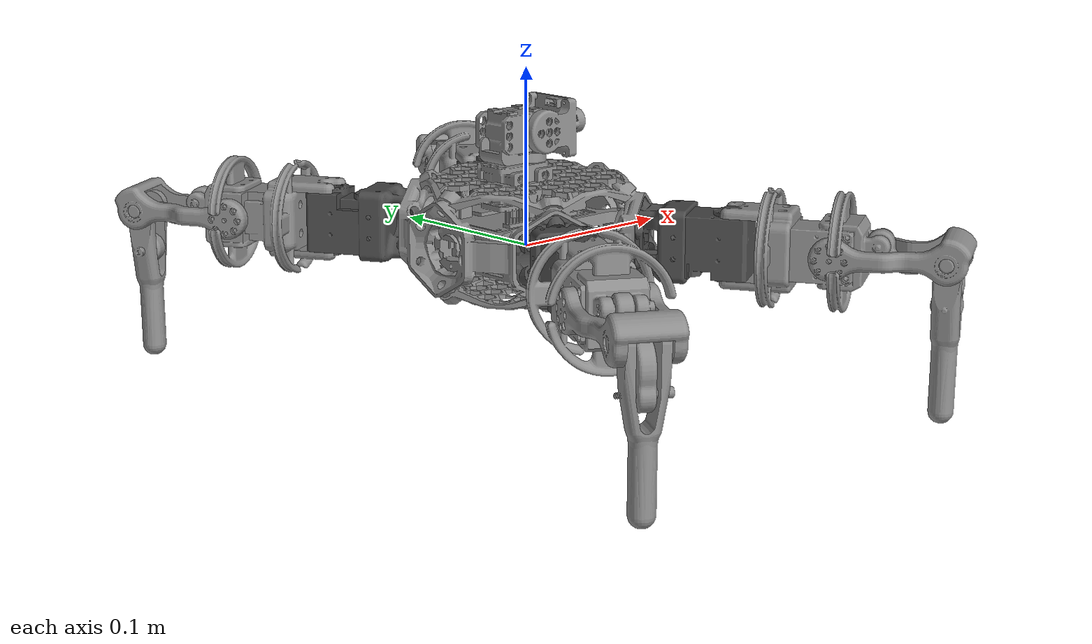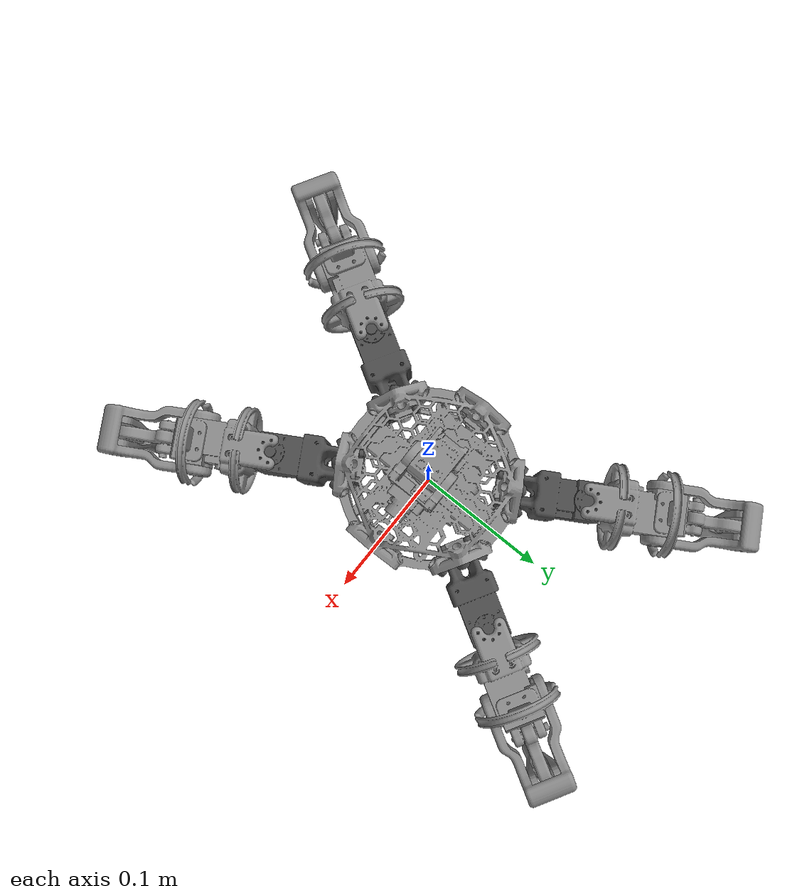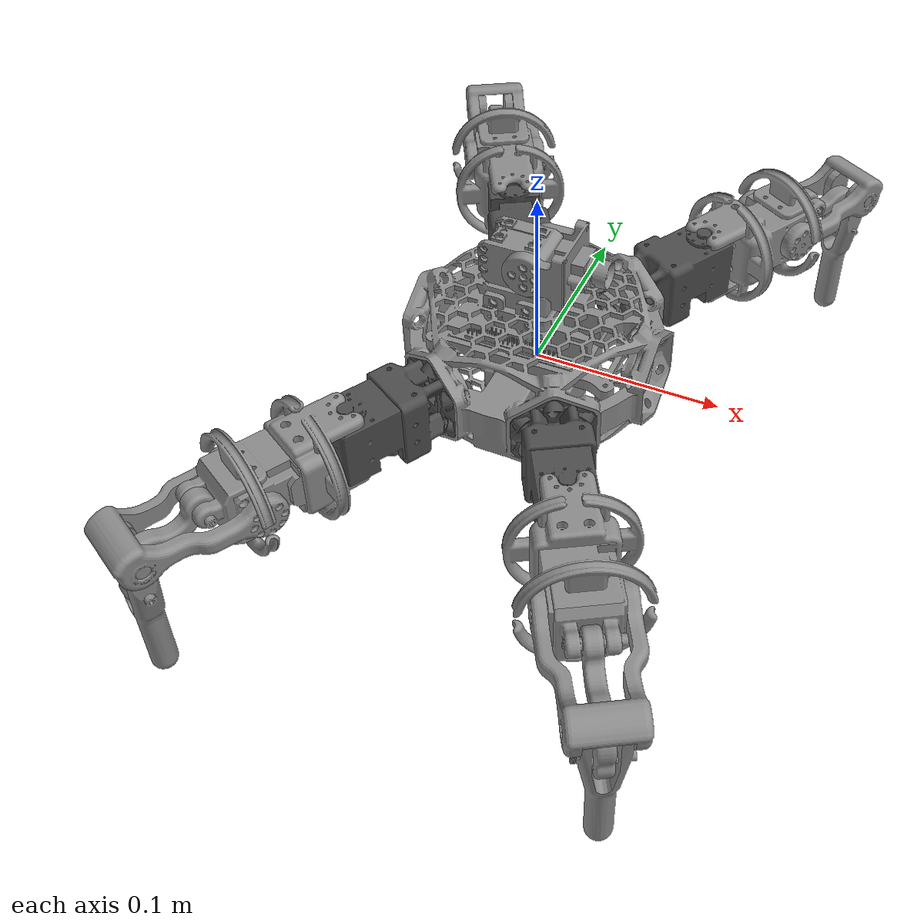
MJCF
<mujoco model="snapbot">
    <compiler inertiafromgeom="auto" angle="radian" coordinate="local"/>

    <default>
        <joint limited="true" armature="0.01"/>
        <site type="sphere" rgba=".5 .5 .5 1" size="0.01"/>
        <tendon rgba="0.45 0.1 0 1" width="0.002"/>
        <geom contype="1" conaffinity="1" condim="3" margin="0.001" solref=".02 1" solimp=".8 .8 .01 0.5 2" density="1000"/>
        <equality solref="0.0002 1" solimp="0.99 0.99 0.0001 0.5 2"/>
        <general ctrlrange="-100 100" ctrllimited="true"/>
    </default>

    <option timestep="0.0002" iterations="50" solver="PGS" gravity="0 0 -9.81">
        <flag energy="enable" gravity="enable"/>
    </option>

    <asset>
    </asset>
       <compiler inertiafromgeom="auto" meshdir="./meshes" texturedir="./textures"/>
    <compiler inertiafromgeom="auto" meshdir="./meshes"/>

    <include file="asset.xml"/>

    <worldbody>
        <light directional="true" diffuse=".8 .8 .8" specular=".2 .2 .2" pos="0 0 0.5" dir="0 0 -1"/>
        <include file="snapbot_4_1245.xml"/>
    </worldbody>

    <equality>
        <connect active="true" name="equality_constraint1" anchor="0 -0.025 0" body1="Leg_module_1_4" body2="Leg_module_1_4bar"/>
        <connect active="true" name="equality_constraint2" anchor="0 -0.025 0" body1="Leg_module_2_4" body2="Leg_module_2_4bar"/>
        <connect active="true" name="equality_constraint4" anchor="0 -0.025 0" body1="Leg_module_4_4" body2="Leg_module_4_4bar"/>
        <connect active="true" name="equality_constraint5" anchor="0 -0.025 0" body1="Leg_module_5_4" body2="Leg_module_5_4bar"/>
    </equality>

    <actuator>
        <motor name="actuator3" ctrllimited="true" ctrlrange="-10 10" joint="leg_1_2"
                 gear="47.2660957561"/>
        <motor name="actuator4" ctrllimited="true" ctrlrange="-10 10" joint="leg_1_3"
                 gear="47.2660957561"/>
        <motor name="actuator5" ctrllimited="true" ctrlrange="-10 10" joint="leg_2_2"
                 gear="47.2660957561"/>
        <motor name="actuator6" ctrllimited="true" ctrlrange="-10 10" joint="leg_2_3"
                 gear="47.2660957561"/>
        <motor name="actuator9" ctrllimited="true" ctrlrange="-10 10" joint="leg_4_2"
                 gear="47.2660957561"/>
        <motor name="actuator10" ctrllimited="true" ctrlrange="-10 10" joint="leg_4_3"
                 gear="47.2660957561"/>
        <motor name="actuator11" ctrllimited="true" ctrlrange="-10 10" joint="leg_5_2"
                 gear="47.2660957561"/>
        <motor name="actuator12" ctrllimited="true" ctrlrange="-10 10" joint="leg_5_3"
                 gear="47.2660957561"/>
    </actuator>
</mujoco>

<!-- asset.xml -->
<mujoco>
    <asset>
        <mesh name="Body" file="meshes/Body.STL" />
        <mesh name="Camera_module_1" file="meshes/Camera_module_1.STL" />
        <mesh name="Camera_module_2" file="meshes/Camera_module_2.STL" />

        <mesh name="Leg_module_1_1" file="meshes/Leg_module_1_1.STL" />
        <mesh name="Leg_module_1_2" file="meshes/Leg_module_1_2.STL" />
        <mesh name="Leg_module_1_3" file="meshes/Leg_module_1_3.STL" />
        <mesh name="Leg_module_1_4" file="meshes/Leg_module_1_4.STL" />
        <mesh name="Leg_module_1_4bar" file="meshes/Leg_module_1_4bar.STL" />

        <mesh name="Leg_module_2_1" file="meshes/Leg_module_2_1.STL" />
        <mesh name="Leg_module_2_2" file="meshes/Leg_module_2_2.STL" />
        <mesh name="Leg_module_2_3" file="meshes/Leg_module_2_3.STL" />
        <mesh name="Leg_module_2_4" file="meshes/Leg_module_2_4.STL" />
        <mesh name="Leg_module_2_4bar" file="meshes/Leg_module_2_4bar.STL" />

        <mesh name="Leg_module_3_1" file="meshes/Leg_module_3_1.STL" />
        <mesh name="Leg_module_3_2" file="meshes/Leg_module_3_2.STL" />
        <mesh name="Leg_module_3_3" file="meshes/Leg_module_3_3.STL" />
        <mesh name="Leg_module_3_4" file="meshes/Leg_module_3_4.STL" />
        <mesh name="Leg_module_3_4bar" file="meshes/Leg_module_3_4bar.STL" />

        <mesh name="Leg_module_4_1" file="meshes/Leg_module_4_1.STL" />
        <mesh name="Leg_module_4_2" file="meshes/Leg_module_4_2.STL" />
        <mesh name="Leg_module_4_3" file="meshes/Leg_module_4_3.STL" />
        <mesh name="Leg_module_4_4" file="meshes/Leg_module_4_4.STL" />
        <mesh name="Leg_module_4_4bar" file="meshes/Leg_module_4_4bar.STL" />

        <mesh name="Leg_module_5_1" file="meshes/Leg_module_5_1.STL" />
        <mesh name="Leg_module_5_2" file="meshes/Leg_module_5_2.STL" />
        <mesh name="Leg_module_5_3" file="meshes/Leg_module_5_3.STL" />
        <mesh name="Leg_module_5_4" file="meshes/Leg_module_5_4.STL" />
        <mesh name="Leg_module_5_4bar" file="meshes/Leg_module_5_4bar.STL" />

        <mesh name="Leg_module_6_1" file="meshes/Leg_module_6_1.STL" />
        <mesh name="Leg_module_6_2" file="meshes/Leg_module_6_2.STL" />
        <mesh name="Leg_module_6_3" file="meshes/Leg_module_6_3.STL" />
        <mesh name="Leg_module_6_4" file="meshes/Leg_module_6_4.STL" />
        <mesh name="Leg_module_6_4bar" file="meshes/Leg_module_6_4bar.STL" />
    </asset>
</mujoco>

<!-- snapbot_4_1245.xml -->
<mujoco>

<body name="Body" pos="0 0 0" euler="0 0 0">

    <body name="Camera_module_1" pos="0 0 0.0476705257539267" euler="0 0 2.71487279909846">
        <joint name="camera_1" type="hinge" pos="0 0 0" axis="0 0 1" frictionloss="0.7" damping="0.1" />
        <inertial pos="0.00652656979384509 0.00344579233179434 0.0166383716296387" mass="0.0631785349056668"
            fullinertia="1.62642913929261E-06 2.16302130147651E-06 2.57241198744282E-06 -2.15537782337987E-07 -2.3575284377688E-08 -1.07181784470334E-08"/>

        <body name="Camera_module_2" pos="0 0 0.0183294742460734" euler="-0.00940777862508657 0.016293068306851 -7.66430506155596E-05">
            <joint name="camera_2" type="hinge" pos="0 0 0" axis="0.4 -0.866025403784438 0" limited="true" range="-3.14 0" frictionloss="0.7" damping="0.1" />
            <inertial pos="0.00652656979384509 0.00344579233179434 0.0166383716296387" mass="0.0631785349056668"
                fullinertia="1.62642913929261E-06 2.16302130147651E-06 2.57241198744282E-06 -2.15537782337987E-07 -2.3575284377688E-08 -1.07181784470334E-08"/>
        <geom name="camera_module_2" type="mesh" mesh="Camera_module_2" rgba="0.55 0.55 0.55 1"/>
        </body>
        <geom name="camera_module_1" type="mesh" mesh="Camera_module_1" rgba="0.55 0.55 0.55 1"/>
    </body>

    <body name="Leg_module_1_1" pos="-0.0389249999999994 -0.067420077684619 0.00800000000000007" euler="1.5707963267949 -0.52359877559829 0 ">
        <inertial pos="-7.13724657916415E-08 0.000373799301046029 0.0154182546673216" mass="0.0631785349056668"
            fullinertia="1.7187711929136E-05 1.51262656733829E-05 1.20475796652155E-05 -5.83240695477332E-11 -2.19004554231787E-11 -2.63262418810457E-08"/>

        <body name="Leg_module_1_2" pos="0 0 0.03725" euler="0 0 0">
            <joint name="leg_1_2" type="hinge" pos="0 0 0" axis="0 1 0" limited="true" range="-1.5 1.5"/>
            <inertial pos="-0.000290776360641731 0.000350553903850227 0.0424303561818183" mass="0.0824272438246167"
                fullinertia="2.30529583873532E-05 2.12214701574574E-05 2.44663283938561E-05 -3.10383306587857E-09 1.49529130127085E-09 -1.38478939744174E-07"/>

            <body name="Leg_module_1_3" pos="0 0.00029999999999997 0.05675" euler="-0.0100573048452913 0 0">
                <joint name="leg_1_3" type="hinge" pos="0 0 0" axis="1 0 0" limited="true" range="-0.7 0.7"/>
                <inertial pos="2.45741484106166E-09 0.000972843111612398 0.0362265364672091" mass="0.0151486232431239"
                    fullinertia="1.00807802365218E-05 1.39066075750629E-05 4.80921677651482E-06 4.39144266500018E-12 1.00434444831946E-12 -4.89507332017665E-07"/>

                <body name="Leg_module_1_4" pos="0 -0.000603428117922688 0.0599969655441553" euler="-0.0105798453585739 0 0">
                    <joint name="leg_1_4" type="hinge" pos="0 0 0" axis="1 0 0" />
                    <inertial pos="4.2049063279227E-05 -0.039076824241083 0.000258194696472008" mass="0.0147333532003768"
                        fullinertia="1.15244152883744E-05 8.83031900445984E-07 1.19866034928746E-05 -2.48276737382714E-13 -7.91098093199601E-11 7.35395711252574E-08"/>
                    <geom name="leg_module_1_4" type="mesh" mesh="Leg_module_1_4" rgba="0.55 0.55 0.55 1"/>
                </body>

                <geom name="leg_module_1_3" type="mesh" mesh="Leg_module_1_3" rgba="0.55 0.55 0.55 1"/>
            </body>

            <body name="Leg_module_1_4bar" pos="0 0.00629999999999993 0.0804999999999999" euler="-0.0165784581965256 0 0">
                <joint name="leg_1_4bar" type="hinge" pos="0 0 0" axis="1 0 0" />
                <inertial pos="-0.000153041712520068 -0.0140289201388825 0.0234631009730388" mass="0.00683592925491239"
                    fullinertia="2.34158176837936E-06 1.56240282628846E-06 8.57932156498236E-07 1.96473826365662E-09 8.83006715898015E-09 7.88959763188745E-07"/>
                <geom name="leg_module_1_4bar" type="mesh" mesh="Leg_module_1_4bar" rgba="0.55 0.55 0.55 1"/>
            </body>

            <geom name="leg_module_1_2" type="mesh" mesh="Leg_module_1_2" rgba="0.55 0.55 0.55 1"/>
        </body>
        <geom name="leg_module_1_1" type="mesh" mesh="Leg_module_1_1" rgba="0.3 0.3 0.3 1" contype="2" conaffinity="2"/>
    </body>

    <body name="Leg_module_2_1" pos="0.038925000000001 -0.067420077684618 0.00800000000000001" euler="1.5707963267949 0.52359877559831 0">
        <inertial pos="-6.95517456267281E-08 0.000373796224617955 0.0154182547311469" mass="0.0631785349056668"
            fullinertia="1.7187711736626E-05 1.5126265640837E-05 1.20475795338245E-05 -5.83542950351694E-11 -2.10512182302273E-11 -2.6325167749467E-08"/>

        <body name="Leg_module_2_2" pos="0 0 0.03725" euler="0 0 0">
            <joint name="leg_2_2" type="hinge" pos="0 0 0" axis="0 1 0" limited="true" range="-1.5 1.5"/>
            <inertial pos="-0.000290776360641731 0.000350553903850227 0.0424303561818183" mass="0.0824272438246167"
                fullinertia="2.30529583873532E-05 2.12214701574574E-05 2.44663283938561E-05 -3.10383306587857E-09 1.49529130127085E-09 -1.38478939744174E-07"/>

            <body name="Leg_module_2_3" pos="0 0.00029999999999997 0.05675" euler="-0.0100573048452913 0 0">
                <joint name="leg_2_3" type="hinge" pos="0 0 0" axis="1 0 0" limited="true" range="-0.7 0.7"/>
                <inertial pos="2.45741484106166E-09 0.000972843111612398 0.0362265364672091" mass="0.0151486232431239"
                    fullinertia="1.00807802365218E-05 1.39066075750629E-05 4.80921677651482E-06 4.39144266500018E-12 1.00434444831946E-12 -4.89507332017665E-07"/>

                <body name="Leg_module_2_4" pos="0 -0.000603428117922688 0.0599969655441553" euler="-0.0105798453585739 0 0">
                    <joint name="leg_2_4" type="hinge" pos="0 0 0" axis="1 0 0" />
                    <inertial pos="4.2049063279227E-05 -0.039076824241083 0.000258194696472008" mass="0.0147333532003768"
                        fullinertia="1.15244152883744E-05 8.83031900445984E-07 1.19866034928746E-05 -2.48276737382714E-13 -7.91098093199601E-11 7.35395711252574E-08"/>
                    <geom name="leg_module_2_4" type="mesh" mesh="Leg_module_2_4" rgba="0.55 0.55 0.55 1"/>
                </body>

                <geom name="leg_module_2_3" type="mesh" mesh="Leg_module_2_3" rgba="0.55 0.55 0.55 1"/>
            </body>

            <body name="Leg_module_2_4bar" pos="0 0.00629999999999993 0.0804999999999999" euler="-0.0165784581965256 0 0">
                <joint name="leg_2_4bar" type="hinge" pos="0 0 0" axis="1 0 0" />
                <inertial pos="-0.000153041712520068 -0.0140289201388825 0.0234631009730388" mass="0.00683592925491239"
                    fullinertia="2.34158176837936E-06 1.56240282628846E-06 8.57932156498236E-07 1.96473826365662E-09 8.83006715898015E-09 7.88959763188745E-07"/>
                <geom name="leg_module_2_4bar" type="mesh" mesh="Leg_module_2_4bar" rgba="0.55 0.55 0.55 1"/>
            </body>

            <geom name="leg_module_2_2" type="mesh" mesh="Leg_module_2_2" rgba="0.55 0.55 0.55 1"/>
        </body>
        <geom name="leg_module_2_1" type="mesh" mesh="Leg_module_2_1" rgba="0.3 0.3 0.3 1" contype="2" conaffinity="2"/>
    </body>

    <body name="Leg_module_4_1" pos="0.0389249999999999 0.0674200776846187 0.00800000000000003" euler="1.5707963267949 2.6179938779915 0">
        <inertial pos="-7.14195381237848E-08 0.000373799284010597 0.0154182546427434" mass="0.0631785349539091"
            fullinertia="1.71877118801813E-05 1.51262657263492E-05 1.20475796631155E-05 -5.8296210718309E-11 -2.19264106429705E-11 -2.63262530129922E-08"/>

        <body name="Leg_module_4_2" pos="0 0 0.03725" euler="0 0 0">
            <joint name="leg_4_2" type="hinge" pos="0 0 0" axis="0 1 0" limited="true" range="-1.5 1.5"/>
            <inertial pos="-0.000290776360642918 0.000350553903847839 0.0424303561817777" mass="0.0824270440490109"
                fullinertia="2.30529585034879E-05 2.12214709599619E-05 2.44663294862253E-05 -3.10286926634698E-09 1.49495155290744E-09 -1.38476843680271E-07"/>

            <body name="Leg_module_4_3" pos="0 0.000300000000000803 0.05675" euler="-0.0100573048452958 0 0">
                <joint name="leg_4_3" type="hinge" pos="0 0 0" axis="1 0 0" limited="true" range="-0.7 0.7"/>
                <inertial pos="2.45741484106166E-09 0.000972843111612398 0.0362265364672091" mass="0.0151486232431239"
                    fullinertia="1.00807802365218E-05 1.39066075750629E-05 4.80921677651482E-06 4.39144266500018E-12 1.00434444831946E-12 -4.89507332017665E-07"/>

                <body name="Leg_module_4_4" pos="0 -0.000603428117922688 0.0599969655441553" euler="-0.0105798453585739 0 0">
                    <joint name="leg_4_4" type="hinge" pos="0 0 0" axis="1 0 0" />
                    <inertial pos="4.2049063279227E-05 -0.039076824241083 0.000258194696472008" mass="0.0147333532003768"
                        fullinertia="1.15244152883744E-05 8.83031900445984E-07 1.19866034928746E-05 -2.48276737382714E-13 -7.91098093199601E-11 7.35395711252574E-08"/>
                    <geom name="leg_module_4_4" type="mesh" mesh="Leg_module_4_4" rgba="0.55 0.55 0.55 1"/>
                </body>

                <geom name="leg_module_4_3" type="mesh" mesh="Leg_module_4_3" rgba="0.55 0.55 0.55 1"/>
            </body>

            <body name="Leg_module_4_4bar" pos="0 0.00629999999999993 0.0804999999999999" euler="-0.0165784581965256 0 0">
                <joint name="leg_4_4bar" type="hinge" pos="0 0 0" axis="1 0 0" />
                <inertial pos="-0.000153041712520068 -0.0140289201388825 0.0234631009730388" mass="0.00683592925491239"
                    fullinertia="2.34158176837936E-06 1.56240282628846E-06 8.57932156498236E-07 1.96473826365662E-09 8.83006715898015E-09 7.88959763188745E-07"/>
                <geom name="leg_module_4_4bar" type="mesh" mesh="Leg_module_4_4bar" rgba="0.55 0.55 0.55 1"/>
            </body>

            <geom name="leg_module_4_2" type="mesh" mesh="Leg_module_4_2" rgba="0.55 0.55 0.55 1"/>
        </body>
        <geom name="leg_module_4_1" type="mesh" mesh="Leg_module_4_1" rgba="0.3 0.3 0.3 1" contype="2" conaffinity="2"/>
    </body>

    <body name="Leg_module_5_1" pos="-0.0389250000000003 0.0674200776846184 0.00799999999999998" euler="-1.5707963267949 -0.523598775598304 0">
        <inertial pos="-7.14195381237848E-08 0.000373799284010597 0.0154182546427434" mass="0.0631785349539091"
            fullinertia="1.71877118801813E-05 1.51262657263492E-05 1.20475796631155E-05 -5.8296210718309E-11 -2.19264106429705E-11 -2.63262530129922E-08"/>

        <body name="Leg_module_5_2" pos="0 0 0.03725" euler="0 0 3.14159265358979">
            <joint name="leg_5_2" type="hinge" pos="0 0 0" axis="0 1 0" limited="true" range="-1.5 1.5"/>
            <inertial pos="-0.000290776360642918 0.000350553903847839 0.0424303561817777" mass="0.0824270440490109"
                fullinertia="2.30529585034879E-05 2.12214709599619E-05 2.44663294862253E-05 -3.10286926634698E-09 1.49495155290744E-09 -1.38476843680271E-07"/>

            <body name="Leg_module_5_3" pos="0 0.000300000000000803 0.05675" euler="-0.0100573048452958 0 0">
                <joint name="leg_5_3" type="hinge" pos="0 0 0" axis="1 0 0" limited="true" range="-0.7 0.7"/>
                <inertial pos="2.45741484106166E-09 0.000972843111612398 0.0362265364672091" mass="0.0151486232431239"
                    fullinertia="1.00807802365218E-05 1.39066075750629E-05 4.80921677651482E-06 4.39144266500018E-12 1.00434444831946E-12 -4.89507332017665E-07"/>

                <body name="Leg_module_5_4" pos="0 -0.000603428117922688 0.0599969655441553" euler="-0.0105798453585739 0 0">
                    <joint name="leg_5_4" type="hinge" pos="0 0 0" axis="1 0 0" />
                    <inertial pos="4.2049063279227E-05 -0.039076824241083 0.000258194696472008" mass="0.0147333532003768"
                        fullinertia="1.15244152883744E-05 8.83031900445984E-07 1.19866034928746E-05 -2.48276737382714E-13 -7.91098093199601E-11 7.35395711252574E-08"/>
                    <geom name="leg_module_5_4" type="mesh" mesh="Leg_module_5_4" rgba="0.55 0.55 0.55 1"/>
                </body>

                <geom name="leg_module_5_3" type="mesh" mesh="Leg_module_5_3" rgba="0.55 0.55 0.55 1"/>
            </body>

            <body name="Leg_module_5_4bar" pos="0 0.00629999999999993 0.0804999999999999" euler="-0.0165784581965256 0 0">
                <joint name="leg_5_4bar" type="hinge" pos="0 0 0" axis="1 0 0" />
                <inertial pos="-0.000153041712520068 -0.0140289201388825 0.0234631009730388" mass="0.00683592925491239"
                    fullinertia="2.34158176837936E-06 1.56240282628846E-06 8.57932156498236E-07 1.96473826365662E-09 8.83006715898015E-09 7.88959763188745E-07"/>
                <geom name="leg_module_5_4bar" type="mesh" mesh="Leg_module_5_4bar" rgba="0.55 0.55 0.55 1"/>
            </body>

            <geom name="leg_module_5_2" type="mesh" mesh="Leg_module_5_2" rgba="0.55 0.55 0.55 1"/>
        </body>
        <geom name="leg_module_5_1" type="mesh" mesh="Leg_module_5_1" rgba="0.3 0.3 0.3 1" contype="2" conaffinity="2"/>
    </body>

    <geom name="body" type="mesh" mesh="Body" rgba="0.55 0.55 0.55 1"/>
</body>

</mujoco>
